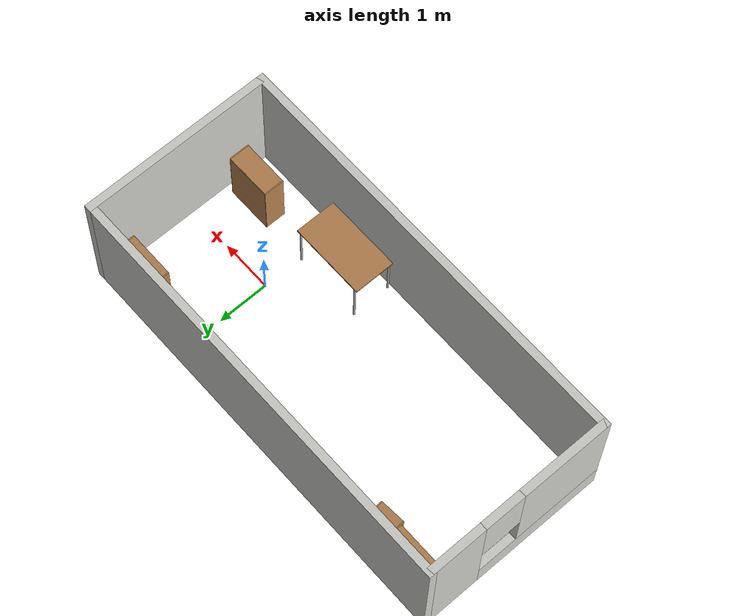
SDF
<sdf version="1.6">
 <world name="default">
  <light name="sun" type="directional">
   <pose>0 0 10 0 -0 0</pose>
   <diffuse>0.8 0.8 0.8 1</diffuse>
   <specular>0.2 0.2 0.2 1</specular>
   <attenuation>
    <range>1000</range>
    <constant>0.9</constant>
    <linear>0.01</linear>
    <quadratic>0.001</quadratic>
   </attenuation>
   <direction>-0.5 0.1 -0.9</direction>
  </light>
  <gravity>0 0 -9.8</gravity>
  <magnetic_field>6e-06 2.3e-05 -4.2e-05</magnetic_field>
  <atmosphere type="adiabatic"/>
  <physics name="default_physics" default="0" type="ode">
   <max_step_size>0.001</max_step_size>
   <real_time_factor>1</real_time_factor>
   <real_time_update_rate>1000</real_time_update_rate>
  </physics>
  <scene><ambient>0.4 0.4 0.4 1</ambient><background>0.7 0.7 0.7 1</background><shadows>1</shadows></scene>
  <audio><device>default</device></audio>
  <spherical_coordinates>
   <surface_model>EARTH_WGS84</surface_model>
   <latitude_deg>0</latitude_deg>
   <longitude_deg>0</longitude_deg>
   <elevation>0</elevation>
   <heading_deg>0</heading_deg>
  </spherical_coordinates>
  <model name="SetUpTiledRoom">
   <pose>-2.07734 0.106286 0 0 -0 0</pose>
   <link name="Wall_0">
    <pose>-4.05 0 0 0 -0 -1.5708</pose>
    <visual name="Wall_0_Visual_0">
     <pose>-1.2975 0 1.25 0 -0 0</pose>
     <geometry><box><size>1.155 0.15 2.5</size></box></geometry>
     <material>
      <script><uri>file://media/materials/scripts/gazebo.material</uri><name>Gazebo/CeilingTiled</name></script>
      <ambient>1 1 1 1</ambient>
     </material>
     <meta><layer>0</layer></meta>
    </visual>
    <collision name="Wall_0_Collision_0">
     <geometry><box><size>1.155 0.15 2.5</size></box></geometry>
     <pose>-1.2975 0 1.25 0 -0 0</pose>
    </collision>
    <visual name="Wall_0_Visual_1">
     <pose>0.5775 0 0.25 0 -0 0</pose>
     <geometry><box><size>2.595 0.15 0.5</size></box></geometry>
     <material>
      <script><uri>file://media/materials/scripts/gazebo.material</uri><name>Gazebo/CeilingTiled</name></script>
      <ambient>1 1 1 1</ambient>
     </material>
     <meta><layer>0</layer></meta>
    </visual>
    <collision name="Wall_0_Collision_1">
     <geometry><box><size>2.595 0.15 0.5</size></box></geometry>
     <pose>0.5775 0 0.25 0 -0 0</pose>
    </collision>
    <visual name="Wall_0_Visual_2">
     <pose>0.9775 0 1.5 0 -0 0</pose>
     <geometry><box><size>1.795 0.15 2</size></box></geometry>
     <material>
      <script><uri>file://media/materials/scripts/gazebo.material</uri><name>Gazebo/CeilingTiled</name></script>
      <ambient>1 1 1 1</ambient>
     </material>
     <meta><layer>0</layer></meta>
    </visual>
    <collision name="Wall_0_Collision_2">
     <geometry><box><size>1.795 0.15 2</size></box></geometry>
     <pose>0.9775 0 1.5 0 -0 0</pose>
    </collision>
    <visual name="Wall_0_Visual_3">
     <pose>-0.32 0 1.9 0 -0 0</pose>
     <geometry><box><size>0.8 0.15 1.2</size></box></geometry>
     <material>
      <script><uri>file://media/materials/scripts/gazebo.material</uri><name>Gazebo/CeilingTiled</name></script>
      <ambient>1 1 1 1</ambient>
     </material>
     <meta><layer>0</layer></meta>
    </visual>
    <collision name="Wall_0_Collision_3">
     <geometry><box><size>0.8 0.15 1.2</size></box></geometry>
     <pose>-0.32 0 1.9 0 -0 0</pose>
    </collision>
   </link>
   <link name="Wall_1">
    <collision name="Wall_1_Collision">
     <geometry><box><size>8.25 0.15 2.5</size></box></geometry>
     <pose>0 0 1.25 0 -0 0</pose>
    </collision>
    <visual name="Wall_1_Visual">
     <pose>0 0 1.25 0 -0 0</pose>
     <geometry><box><size>8.25 0.15 2.5</size></box></geometry>
     <material>
      <script><uri>file://media/materials/scripts/gazebo.material</uri><name>Gazebo/CeilingTiled</name></script>
      <ambient>1 1 1 1</ambient>
     </material>
     <meta><layer>0</layer></meta>
    </visual>
    <pose>0 -1.8 0 0 -0 0</pose>
   </link>
   <link name="Wall_2">
    <collision name="Wall_2_Collision">
     <geometry><box><size>3.75 0.15 2.5</size></box></geometry>
     <pose>0 0 1.25 0 -0 0</pose>
    </collision>
    <visual name="Wall_2_Visual">
     <pose>0 0 1.25 0 -0 0</pose>
     <geometry><box><size>3.75 0.15 2.5</size></box></geometry>
     <material>
      <script><uri>file://media/materials/scripts/gazebo.material</uri><name>Gazebo/CeilingTiled</name></script>
      <ambient>1 1 1 1</ambient>
     </material>
     <meta><layer>0</layer></meta>
    </visual>
    <pose>4.05 0 0 0 -0 1.5708</pose>
   </link>
   <link name="Wall_3">
    <collision name="Wall_3_Collision">
     <geometry><box><size>8.25 0.15 2.5</size></box></geometry>
     <pose>0 0 1.25 0 -0 0</pose>
    </collision>
    <visual name="Wall_3_Visual">
     <pose>0 0 1.25 0 -0 0</pose>
     <geometry><box><size>8.25 0.15 2.5</size></box></geometry>
     <material>
      <script><uri>file://media/materials/scripts/gazebo.material</uri><name>Gazebo/CeilingTiled</name></script>
      <ambient>1 1 1 1</ambient>
     </material>
     <meta><layer>0</layer></meta>
    </visual>
    <pose>0 1.8 0 0 -0 3.14159</pose>
   </link>
   <static>1</static>
  </model>
  <model name="bookshelf">
   <static>1</static>
   <link name="link">
    <inertial><mass>1</mass></inertial>
    <collision name="back">
     <pose>0 0.005 0.6 0 -0 0</pose>
     <geometry><box><size>0.9 0.01 1.2</size></box></geometry>
    </collision>
    <visual name="visual1">
     <pose>0 0.005 0.6 0 -0 0</pose>
     <geometry><box><size>0.9 0.01 1.2</size></box></geometry>
     <material>
      <script><uri>file://media/materials/scripts/gazebo.material</uri><name>Gazebo/Wood</name></script>
     </material>
    </visual>
    <collision name="left_side">
     <pose>0.45 -0.195 0.6 0 -0 0</pose>
     <geometry><box><size>0.02 0.4 1.2</size></box></geometry>
    </collision>
    <visual name="visual2">
     <pose>0.45 -0.195 0.6 0 -0 0</pose>
     <geometry><box><size>0.02 0.4 1.2</size></box></geometry>
     <material>
      <script><uri>file://media/materials/scripts/gazebo.material</uri><name>Gazebo/Wood</name></script>
     </material>
    </visual>
    <collision name="right_side">
     <pose>-0.45 -0.195 0.6 0 -0 0</pose>
     <geometry><box><size>0.02 0.4 1.2</size></box></geometry>
    </collision>
    <visual name="visual3">
     <pose>-0.45 -0.195 0.6 0 -0 0</pose>
     <geometry><box><size>0.02 0.4 1.2</size></box></geometry>
     <material>
      <script><uri>file://media/materials/scripts/gazebo.material</uri><name>Gazebo/Wood</name></script>
     </material>
    </visual>
    <collision name="bottom">
     <pose>0 -0.195 0.03 0 -0 0</pose>
     <geometry><box><size>0.88 0.4 0.06</size></box></geometry>
    </collision>
    <visual name="visual4">
     <pose>0 -0.195 0.03 0 -0 0</pose>
     <geometry><box><size>0.88 0.4 0.06</size></box></geometry>
     <material>
      <script><uri>file://media/materials/scripts/gazebo.material</uri><name>Gazebo/Wood</name></script>
     </material>
    </visual>
    <collision name="top">
     <pose>0 -0.195 1.19 0 -0 0</pose>
     <geometry><box><size>0.88 0.4 0.02</size></box></geometry>
    </collision>
    <visual name="visual5">
     <pose>0 -0.195 1.19 0 -0 0</pose>
     <geometry><box><size>0.88 0.4 0.02</size></box></geometry>
     <material>
      <script><uri>file://media/materials/scripts/gazebo.material</uri><name>Gazebo/Wood</name></script>
     </material>
    </visual>
    <collision name="low_shelf">
     <pose>0 -0.195 0.43 0 -0 0</pose>
     <geometry><box><size>0.88 0.4 0.02</size></box></geometry>
    </collision>
    <visual name="visual6">
     <pose>0 -0.195 0.43 0 -0 0</pose>
     <geometry><box><size>0.88 0.4 0.02</size></box></geometry>
     <material>
      <script><uri>file://media/materials/scripts/gazebo.material</uri><name>Gazebo/Wood</name></script>
     </material>
    </visual>
    <collision name="high_shelf">
     <pose>0 -0.195 0.8 0 -0 0</pose>
     <geometry><box><size>0.88 0.4 0.02</size></box></geometry>
    </collision>
    <visual name="visual7">
     <pose>0 -0.195 0.8 0 -0 0</pose>
     <geometry><box><size>0.88 0.4 0.02</size></box></geometry>
     <material>
      <script><uri>file://media/materials/scripts/gazebo.material</uri><name>Gazebo/Wood</name></script>
     </material>
    </visual>
   </link>
   <pose>-5.44253 1.80611 0 0 -0 0</pose>
  </model>
  <model name="cabinet">
   <static>1</static>
   <link name="cabinet_bottom_plate">
    <inertial>
     <pose>0 0 -1 0 -0 0</pose>
     <inertia><ixx>2.05</ixx><ixy>0</ixy><ixz>0</ixz><iyy>2.05</iyy><iyz>0</iyz><izz>2.05</izz></inertia>
     <mass>25</mass>
    </inertial>
    <collision name="cabinet_bottom_plate_geom">
     <pose>0 0 0.01 0 -0 0</pose>
     <geometry><box><size>0.45 0.45 0.02</size></box></geometry>
    </collision>
    <visual name="cabinet_bottom_plate_geom_visual">
     <pose>0 0 0.01 0 -0 0</pose>
     <geometry><box><size>0.45 0.45 0.02</size></box></geometry>
     <material>
      <script><uri>file://media/materials/scripts/gazebo.material</uri><name>Gazebo/Wood</name></script>
     </material>
    </visual>
    <collision name="cabinet_bottom_plate_geom_cabinet_back_plate">
     <pose>0.235 0 0.51 0 -0 0</pose>
     <geometry><box><size>0.02 0.45 1.02</size></box></geometry>
    </collision>
    <visual name="cabinet_bottom_plate_geom_cabinet_back_plate_visual">
     <pose>0.235 0 0.51 0 -0 0</pose>
     <geometry><box><size>0.02 0.45 1.02</size></box></geometry>
     <material>
      <script><uri>file://media/materials/scripts/gazebo.material</uri><name>Gazebo/Wood</name></script>
     </material>
    </visual>
    <collision name="cabinet_bottom_plate_geom_cabinet_left_plate">
     <pose>0 0.235 0.51 0 -0 0</pose>
     <geometry><box><size>0.45 0.02 1.02</size></box></geometry>
    </collision>
    <visual name="cabinet_bottom_plate_geom_cabinet_left_plate_visual">
     <pose>0 0.235 0.51 0 -0 0</pose>
     <geometry><box><size>0.45 0.02 1.02</size></box></geometry>
     <material>
      <script><uri>file://media/materials/scripts/gazebo.material</uri><name>Gazebo/Wood</name></script>
     </material>
    </visual>
    <collision name="cabinet_bottom_plate_geom_cabinet_middle_plate">
     <pose>0 0 0.51 0 -0 0</pose>
     <geometry><box><size>0.45 0.45 0.02</size></box></geometry>
    </collision>
    <visual name="cabinet_bottom_plate_geom_cabinet_middle_plate_visual">
     <pose>0 0 0.51 0 -0 0</pose>
     <geometry><box><size>0.45 0.45 0.02</size></box></geometry>
     <material>
      <script><uri>file://media/materials/scripts/gazebo.material</uri><name>Gazebo/Wood</name></script>
     </material>
    </visual>
    <collision name="cabinet_bottom_plate_geom_cabinet_right_plate">
     <pose>0 -0.235 0.51 0 -0 0</pose>
     <geometry><box><size>0.45 0.02 1.02</size></box></geometry>
    </collision>
    <visual name="cabinet_bottom_plate_geom_cabinet_right_plate_visual">
     <pose>0 -0.235 0.51 0 -0 0</pose>
     <geometry><box><size>0.45 0.02 1.02</size></box></geometry>
     <material>
      <script><uri>file://media/materials/scripts/gazebo.material</uri><name>Gazebo/Wood</name></script>
     </material>
    </visual>
    <collision name="cabinet_bottom_plate_geom_cabinet_top_plate">
     <pose>0 0 1.01 0 -0 0</pose>
     <geometry><box><size>0.45 0.45 0.02</size></box></geometry>
    </collision>
    <visual name="cabinet_bottom_plate_geom_cabinet_top_plate_visual">
     <pose>0 0 1.01 0 -0 0</pose>
     <geometry><box><size>0.45 0.45 0.02</size></box></geometry>
     <material>
      <script><uri>file://media/materials/scripts/gazebo.material</uri><name>Gazebo/Wood</name></script>
     </material>
    </visual>
   </link>
   <pose>-4.70741 1.53109 -0.008459 0.00086 0.011656 1.64448</pose>
  </model>
  <model name="table">
   <static>1</static>
   <link name="link">
    <collision name="surface">
     <pose>0 0 1 0 -0 0</pose>
     <geometry><box><size>1.5 0.8 0.03</size></box></geometry>
     <surface><friction><ode><mu>0.6</mu><mu2>0.6</mu2></ode></friction></surface>
    </collision>
    <visual name="visual1">
     <pose>0 0 1 0 -0 0</pose>
     <geometry><box><size>1.5 0.8 0.03</size></box></geometry>
     <material>
      <script><uri>file://media/materials/scripts/gazebo.material</uri><name>Gazebo/Wood</name></script>
     </material>
    </visual>
    <collision name="front_left_leg">
     <pose>0.68 0.38 0.5 0 -0 0</pose>
     <geometry><cylinder><radius>0.02</radius><length>1</length></cylinder></geometry>
    </collision>
    <visual name="front_left_leg">
     <pose>0.68 0.38 0.5 0 -0 0</pose>
     <geometry><cylinder><radius>0.02</radius><length>1</length></cylinder></geometry>
     <material>
      <script><uri>file://media/materials/scripts/gazebo.material</uri><name>Gazebo/Grey</name></script>
     </material>
    </visual>
    <collision name="front_right_leg">
     <pose>0.68 -0.38 0.5 0 -0 0</pose>
     <geometry><cylinder><radius>0.02</radius><length>1</length></cylinder></geometry>
    </collision>
    <visual name="front_right_leg">
     <pose>0.68 -0.38 0.5 0 -0 0</pose>
     <geometry><cylinder><radius>0.02</radius><length>1</length></cylinder></geometry>
     <material>
      <script><uri>file://media/materials/scripts/gazebo.material</uri><name>Gazebo/Grey</name></script>
     </material>
    </visual>
    <collision name="back_right_leg">
     <pose>-0.68 -0.38 0.5 0 -0 0</pose>
     <geometry><cylinder><radius>0.02</radius><length>1</length></cylinder></geometry>
    </collision>
    <visual name="back_right_leg">
     <pose>-0.68 -0.38 0.5 0 -0 0</pose>
     <geometry><cylinder><radius>0.02</radius><length>1</length></cylinder></geometry>
     <material>
      <script><uri>file://media/materials/scripts/gazebo.material</uri><name>Gazebo/Grey</name></script>
     </material>
    </visual>
    <collision name="back_left_leg">
     <pose>-0.68 0.38 0.5 0 -0 0</pose>
     <geometry><cylinder><radius>0.02</radius><length>1</length></cylinder></geometry>
    </collision>
    <visual name="back_left_leg">
     <pose>-0.68 0.38 0.5 0 -0 0</pose>
     <geometry><cylinder><radius>0.02</radius><length>1</length></cylinder></geometry>
     <material>
      <script><uri>file://media/materials/scripts/gazebo.material</uri><name>Gazebo/Grey</name></script>
     </material>
    </visual>
   </link>
   <pose>-0.702559 -1.1745 0 0 -0 0</pose>
  </model>
  <model name="marble_1_5cm">
   <link name="link">
    <pose>0 0 0.0075 0 -0 0</pose>
    <inertial>
     <mass>0.0062</mass>
     <inertia>
      <ixx>1.395e-07</ixx>
      <ixy>0</ixy>
      <ixz>0</ixz>
      <iyy>1.395e-07</iyy>
      <iyz>0</iyz>
      <izz>1.395e-07</izz>
     </inertia>
    </inertial>
    <collision name="collision">
     <geometry><sphere><radius>0.0075</radius></sphere></geometry>
     <surface>
      <contact>
       <poissons_ratio>0.22</poissons_ratio>
       <elastic_modulus>5.1e+10</elastic_modulus>
       <ode><kp>100000</kp><kd>100</kd><max_vel>100</max_vel><min_depth>0.001</min_depth></ode>
      </contact>
      <friction>
       <torsional>
        <coefficient>1</coefficient>
        <use_patch_radius>0</use_patch_radius>
        <surface_radius>0.01</surface_radius>
       </torsional>
      </friction>
     </surface>
    </collision>
    <visual name="visual">
     <geometry><sphere><radius>0.0075</radius></sphere></geometry>
     <material>
      <script><uri>file://media/materials/scripts/gazebo.material</uri><name>Gazebo/Blue</name></script>
     </material>
    </visual>
    <velocity_decay><linear>0</linear><angular>0.005</angular></velocity_decay>
   </link>
   <pose>1.07368 -0.386846 -267385 0 -0 0</pose>
  </model>
  <model name="bookshelf_0">
   <static>1</static>
   <link name="link">
    <inertial><mass>1</mass></inertial>
    <collision name="back">
     <pose>0 0.005 0.6 0 -0 0</pose>
     <geometry><box><size>0.9 0.01 1.2</size></box></geometry>
    </collision>
    <visual name="visual1">
     <pose>0 0.005 0.6 0 -0 0</pose>
     <geometry><box><size>0.9 0.01 1.2</size></box></geometry>
     <material>
      <script><uri>file://media/materials/scripts/gazebo.material</uri><name>Gazebo/Wood</name></script>
     </material>
    </visual>
    <collision name="left_side">
     <pose>0.45 -0.195 0.6 0 -0 0</pose>
     <geometry><box><size>0.02 0.4 1.2</size></box></geometry>
    </collision>
    <visual name="visual2">
     <pose>0.45 -0.195 0.6 0 -0 0</pose>
     <geometry><box><size>0.02 0.4 1.2</size></box></geometry>
     <material>
      <script><uri>file://media/materials/scripts/gazebo.material</uri><name>Gazebo/Wood</name></script>
     </material>
    </visual>
    <collision name="right_side">
     <pose>-0.45 -0.195 0.6 0 -0 0</pose>
     <geometry><box><size>0.02 0.4 1.2</size></box></geometry>
    </collision>
    <visual name="visual3">
     <pose>-0.45 -0.195 0.6 0 -0 0</pose>
     <geometry><box><size>0.02 0.4 1.2</size></box></geometry>
     <material>
      <script><uri>file://media/materials/scripts/gazebo.material</uri><name>Gazebo/Wood</name></script>
     </material>
    </visual>
    <collision name="bottom">
     <pose>0 -0.195 0.03 0 -0 0</pose>
     <geometry><box><size>0.88 0.4 0.06</size></box></geometry>
    </collision>
    <visual name="visual4">
     <pose>0 -0.195 0.03 0 -0 0</pose>
     <geometry><box><size>0.88 0.4 0.06</size></box></geometry>
     <material>
      <script><uri>file://media/materials/scripts/gazebo.material</uri><name>Gazebo/Wood</name></script>
     </material>
    </visual>
    <collision name="top">
     <pose>0 -0.195 1.19 0 -0 0</pose>
     <geometry><box><size>0.88 0.4 0.02</size></box></geometry>
    </collision>
    <visual name="visual5">
     <pose>0 -0.195 1.19 0 -0 0</pose>
     <geometry><box><size>0.88 0.4 0.02</size></box></geometry>
     <material>
      <script><uri>file://media/materials/scripts/gazebo.material</uri><name>Gazebo/Wood</name></script>
     </material>
    </visual>
    <collision name="low_shelf">
     <pose>0 -0.195 0.43 0 -0 0</pose>
     <geometry><box><size>0.88 0.4 0.02</size></box></geometry>
    </collision>
    <visual name="visual6">
     <pose>0 -0.195 0.43 0 -0 0</pose>
     <geometry><box><size>0.88 0.4 0.02</size></box></geometry>
     <material>
      <script><uri>file://media/materials/scripts/gazebo.material</uri><name>Gazebo/Wood</name></script>
     </material>
    </visual>
    <collision name="high_shelf">
     <pose>0 -0.195 0.8 0 -0 0</pose>
     <geometry><box><size>0.88 0.4 0.02</size></box></geometry>
    </collision>
    <visual name="visual7">
     <pose>0 -0.195 0.8 0 -0 0</pose>
     <geometry><box><size>0.88 0.4 0.02</size></box></geometry>
     <material>
      <script><uri>file://media/materials/scripts/gazebo.material</uri><name>Gazebo/Wood</name></script>
     </material>
    </visual>
   </link>
   <pose>1.23231 1.77901 0 0 -0 0</pose>
  </model>
  <model name="bookshelf_1">
   <static>1</static>
   <link name="link">
    <inertial><mass>1</mass></inertial>
    <collision name="back">
     <pose>0 0.005 0.6 0 -0 0</pose>
     <geometry><box><size>0.9 0.01 1.2</size></box></geometry>
    </collision>
    <visual name="visual1">
     <pose>0 0.005 0.6 0 -0 0</pose>
     <geometry><box><size>0.9 0.01 1.2</size></box></geometry>
     <material>
      <script><uri>file://media/materials/scripts/gazebo.material</uri><name>Gazebo/Wood</name></script>
     </material>
    </visual>
    <collision name="left_side">
     <pose>0.45 -0.195 0.6 0 -0 0</pose>
     <geometry><box><size>0.02 0.4 1.2</size></box></geometry>
    </collision>
    <visual name="visual2">
     <pose>0.45 -0.195 0.6 0 -0 0</pose>
     <geometry><box><size>0.02 0.4 1.2</size></box></geometry>
     <material>
      <script><uri>file://media/materials/scripts/gazebo.material</uri><name>Gazebo/Wood</name></script>
     </material>
    </visual>
    <collision name="right_side">
     <pose>-0.45 -0.195 0.6 0 -0 0</pose>
     <geometry><box><size>0.02 0.4 1.2</size></box></geometry>
    </collision>
    <visual name="visual3">
     <pose>-0.45 -0.195 0.6 0 -0 0</pose>
     <geometry><box><size>0.02 0.4 1.2</size></box></geometry>
     <material>
      <script><uri>file://media/materials/scripts/gazebo.material</uri><name>Gazebo/Wood</name></script>
     </material>
    </visual>
    <collision name="bottom">
     <pose>0 -0.195 0.03 0 -0 0</pose>
     <geometry><box><size>0.88 0.4 0.06</size></box></geometry>
    </collision>
    <visual name="visual4">
     <pose>0 -0.195 0.03 0 -0 0</pose>
     <geometry><box><size>0.88 0.4 0.06</size></box></geometry>
     <material>
      <script><uri>file://media/materials/scripts/gazebo.material</uri><name>Gazebo/Wood</name></script>
     </material>
    </visual>
    <collision name="top">
     <pose>0 -0.195 1.19 0 -0 0</pose>
     <geometry><box><size>0.88 0.4 0.02</size></box></geometry>
    </collision>
    <visual name="visual5">
     <pose>0 -0.195 1.19 0 -0 0</pose>
     <geometry><box><size>0.88 0.4 0.02</size></box></geometry>
     <material>
      <script><uri>file://media/materials/scripts/gazebo.material</uri><name>Gazebo/Wood</name></script>
     </material>
    </visual>
    <collision name="low_shelf">
     <pose>0 -0.195 0.43 0 -0 0</pose>
     <geometry><box><size>0.88 0.4 0.02</size></box></geometry>
    </collision>
    <visual name="visual6">
     <pose>0 -0.195 0.43 0 -0 0</pose>
     <geometry><box><size>0.88 0.4 0.02</size></box></geometry>
     <material>
      <script><uri>file://media/materials/scripts/gazebo.material</uri><name>Gazebo/Wood</name></script>
     </material>
    </visual>
    <collision name="high_shelf">
     <pose>0 -0.195 0.8 0 -0 0</pose>
     <geometry><box><size>0.88 0.4 0.02</size></box></geometry>
    </collision>
    <visual name="visual7">
     <pose>0 -0.195 0.8 0 -0 0</pose>
     <geometry><box><size>0.88 0.4 0.02</size></box></geometry>
     <material>
      <script><uri>file://media/materials/scripts/gazebo.material</uri><name>Gazebo/Wood</name></script>
     </material>
    </visual>
   </link>
   <pose>1.29384 -0.749097 0 0 -0 0</pose>
  </model>
 </world>
</sdf>
